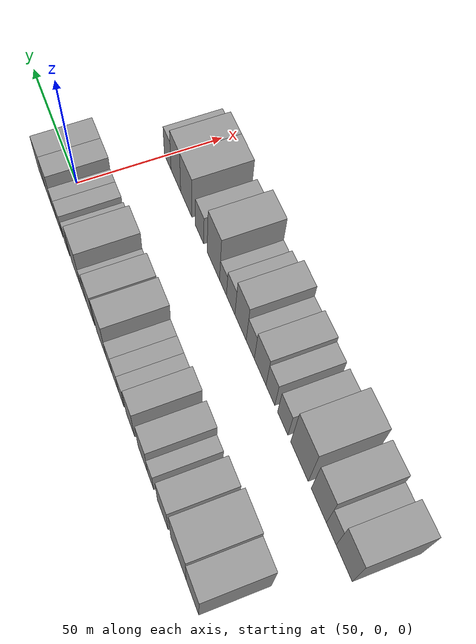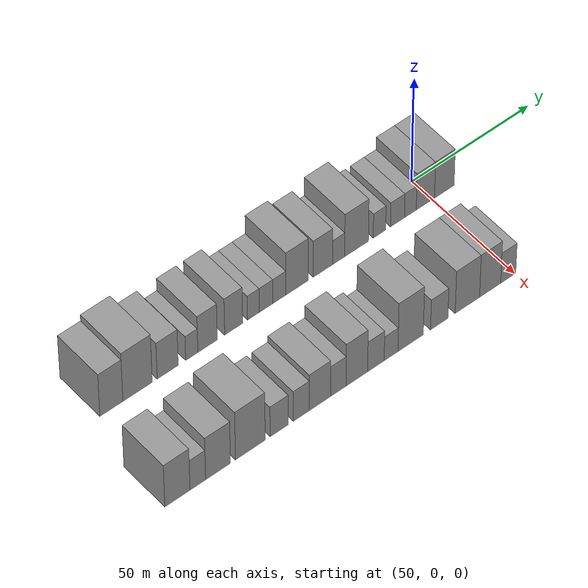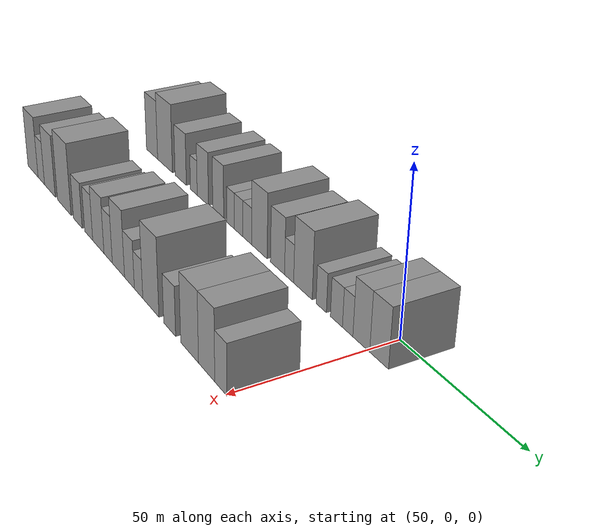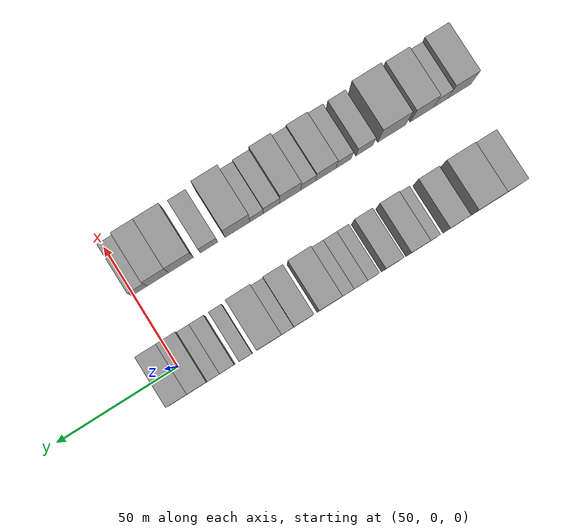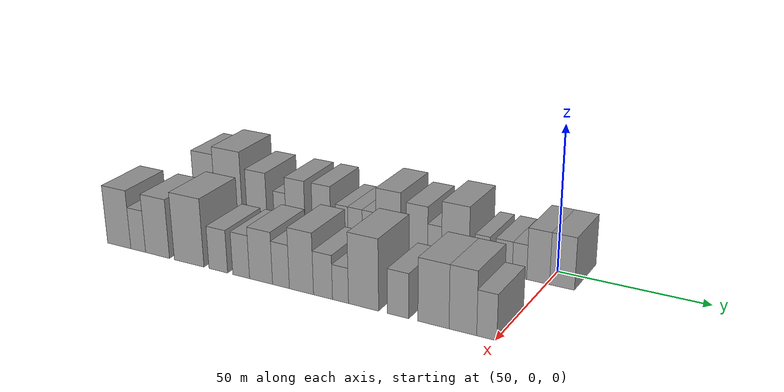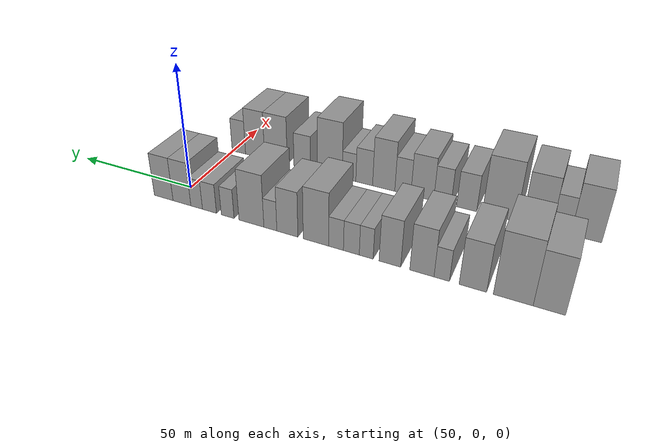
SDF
<sdf version="1.6">
 <world name="default">
  <model name="building_19">
   <static>1</static>
   <pose>50.0000 -131.6414 0 0.000000 0.000000 0.000000</pose>
   <link name="link">
    <pose>0 0 10.50 0 0 0</pose>
    <collision name="collision"><geometry><box><size>20.0000 9.1419 21.0000</size></box></geometry></collision>
    <visual name="visual">
     <cast_shadows>0</cast_shadows>
     <geometry><box><size>20.0000 9.1419 21.0000</size></box></geometry>
     <material>
      <script>
       <uri>model://grey_wall/materials/scripts</uri>
       <uri>model://grey_wall/materials/textures</uri>
       <name>vrc/grey_wall</name>
      </script>
     </material>
    </visual>
   </link>
  </model>
  <model name="building_20">
   <static>1</static>
   <pose>50.0000 -121.2300 0 0.000000 0.000000 0.000000</pose>
   <link name="link">
    <pose>0 0 12.00 0 0 0</pose>
    <collision name="collision"><geometry><box><size>20.0000 11.6808 24.0000</size></box></geometry></collision>
    <visual name="visual">
     <cast_shadows>0</cast_shadows>
     <geometry><box><size>20.0000 11.6808 24.0000</size></box></geometry>
     <material>
      <script>
       <uri>model://grey_wall/materials/scripts</uri>
       <uri>model://grey_wall/materials/textures</uri>
       <name>vrc/grey_wall</name>
      </script>
     </material>
    </visual>
   </link>
  </model>
  <model name="building_21">
   <static>1</static>
   <pose>50.0000 -109.1669 0 0.000000 0.000000 0.000000</pose>
   <link name="link">
    <pose>0 0 9.00 0 0 0</pose>
    <collision name="collision"><geometry><box><size>20.0000 8.4455 18.0000</size></box></geometry></collision>
    <visual name="visual">
     <cast_shadows>0</cast_shadows>
     <geometry><box><size>20.0000 8.4455 18.0000</size></box></geometry>
     <material>
      <script>
       <uri>model://grey_wall/materials/scripts</uri>
       <uri>model://grey_wall/materials/textures</uri>
       <name>vrc/grey_wall</name>
      </script>
     </material>
    </visual>
   </link>
  </model>
  <model name="building_22">
   <static>1</static>
   <pose>50.0000 -99.4959 0 0.000000 0.000000 0.000000</pose>
   <link name="link">
    <pose>0 0 6.00 0 0 0</pose>
    <collision name="collision"><geometry><box><size>20.0000 4.8965 12.0000</size></box></geometry></collision>
    <visual name="visual">
     <cast_shadows>0</cast_shadows>
     <geometry><box><size>20.0000 4.8965 12.0000</size></box></geometry>
     <material>
      <script>
       <uri>model://grey_wall/materials/scripts</uri>
       <uri>model://grey_wall/materials/textures</uri>
       <name>vrc/grey_wall</name>
      </script>
     </material>
    </visual>
   </link>
  </model>
  <model name="building_23">
   <static>1</static>
   <pose>50.0000 -93.1157 0 0.000000 0.000000 0.000000</pose>
   <link name="link">
    <pose>0 0 9.00 0 0 0</pose>
    <collision name="collision"><geometry><box><size>20.0000 7.8640 18.0000</size></box></geometry></collision>
    <visual name="visual">
     <cast_shadows>0</cast_shadows>
     <geometry><box><size>20.0000 7.8640 18.0000</size></box></geometry>
     <material>
      <script>
       <uri>model://grey_wall/materials/scripts</uri>
       <uri>model://grey_wall/materials/textures</uri>
       <name>vrc/grey_wall</name>
      </script>
     </material>
    </visual>
   </link>
  </model>
  <model name="building_24">
   <static>1</static>
   <pose>50.0000 -82.5297 0 0.000000 0.000000 0.000000</pose>
   <link name="link">
    <pose>0 0 9.00 0 0 0</pose>
    <collision name="collision"><geometry><box><size>20.0000 7.3079 18.0000</size></box></geometry></collision>
    <visual name="visual">
     <cast_shadows>0</cast_shadows>
     <geometry><box><size>20.0000 7.3079 18.0000</size></box></geometry>
     <material>
      <script>
       <uri>model://grey_wall/materials/scripts</uri>
       <uri>model://grey_wall/materials/textures</uri>
       <name>vrc/grey_wall</name>
      </script>
     </material>
    </visual>
   </link>
  </model>
  <model name="building_25">
   <static>1</static>
   <pose>50.0000 -74.4745 0 0.000000 0.000000 0.000000</pose>
   <link name="link">
    <pose>0 0 6.00 0 0 0</pose>
    <collision name="collision"><geometry><box><size>20.0000 4.8025 12.0000</size></box></geometry></collision>
    <visual name="visual">
     <cast_shadows>0</cast_shadows>
     <geometry><box><size>20.0000 4.8025 12.0000</size></box></geometry>
     <material>
      <script>
       <uri>model://grey_wall/materials/scripts</uri>
       <uri>model://grey_wall/materials/textures</uri>
       <name>vrc/grey_wall</name>
      </script>
     </material>
    </visual>
   </link>
  </model>
  <model name="building_26">
   <static>1</static>
   <pose>50.0000 -69.2861 0 0.000000 0.000000 0.000000</pose>
   <link name="link">
    <pose>0 0 6.00 0 0 0</pose>
    <collision name="collision"><geometry><box><size>20.0000 5.5743 12.0000</size></box></geometry></collision>
    <visual name="visual">
     <cast_shadows>0</cast_shadows>
     <geometry><box><size>20.0000 5.5743 12.0000</size></box></geometry>
     <material>
      <script>
       <uri>model://grey_wall/materials/scripts</uri>
       <uri>model://grey_wall/materials/textures</uri>
       <name>vrc/grey_wall</name>
      </script>
     </material>
    </visual>
   </link>
  </model>
  <model name="building_27">
   <static>1</static>
   <pose>50.0000 -63.8229 0 0.000000 0.000000 0.000000</pose>
   <link name="link">
    <pose>0 0 6.00 0 0 0</pose>
    <collision name="collision"><geometry><box><size>20.0000 5.3521 12.0000</size></box></geometry></collision>
    <visual name="visual">
     <cast_shadows>0</cast_shadows>
     <geometry><box><size>20.0000 5.3521 12.0000</size></box></geometry>
     <material>
      <script>
       <uri>model://grey_wall/materials/scripts</uri>
       <uri>model://grey_wall/materials/textures</uri>
       <name>vrc/grey_wall</name>
      </script>
     </material>
    </visual>
   </link>
  </model>
  <model name="building_28">
   <static>1</static>
   <pose>50.0000 -56.4965 0 0.000000 0.000000 0.000000</pose>
   <link name="link">
    <pose>0 0 10.50 0 0 0</pose>
    <collision name="collision"><geometry><box><size>20.0000 9.3006 21.0000</size></box></geometry></collision>
    <visual name="visual">
     <cast_shadows>0</cast_shadows>
     <geometry><box><size>20.0000 9.3006 21.0000</size></box></geometry>
     <material>
      <script>
       <uri>model://grey_wall/materials/scripts</uri>
       <uri>model://grey_wall/materials/textures</uri>
       <name>vrc/grey_wall</name>
      </script>
     </material>
    </visual>
   </link>
  </model>
  <model name="building_29">
   <static>1</static>
   <pose>50.0000 -45.8440 0 0.000000 0.000000 0.000000</pose>
   <link name="link">
    <pose>0 0 9.00 0 0 0</pose>
    <collision name="collision"><geometry><box><size>20.0000 8.0045 18.0000</size></box></geometry></collision>
    <visual name="visual">
     <cast_shadows>0</cast_shadows>
     <geometry><box><size>20.0000 8.0045 18.0000</size></box></geometry>
     <material>
      <script>
       <uri>model://grey_wall/materials/scripts</uri>
       <uri>model://grey_wall/materials/textures</uri>
       <name>vrc/grey_wall</name>
      </script>
     </material>
    </visual>
   </link>
  </model>
  <model name="building_30">
   <static>1</static>
   <pose>50.0000 -39.3203 0 0.000000 0.000000 0.000000</pose>
   <link name="link">
    <pose>0 0 6.00 0 0 0</pose>
    <collision name="collision"><geometry><box><size>20.0000 5.0430 12.0000</size></box></geometry></collision>
    <visual name="visual">
     <cast_shadows>0</cast_shadows>
     <geometry><box><size>20.0000 5.0430 12.0000</size></box></geometry>
     <material>
      <script>
       <uri>model://grey_wall/materials/scripts</uri>
       <uri>model://grey_wall/materials/textures</uri>
       <name>vrc/grey_wall</name>
      </script>
     </material>
    </visual>
   </link>
  </model>
  <model name="building_31">
   <static>1</static>
   <pose>50.0000 -31.8423 0 0.000000 0.000000 0.000000</pose>
   <link name="link">
    <pose>0 0 10.50 0 0 0</pose>
    <collision name="collision"><geometry><box><size>20.0000 9.9128 21.0000</size></box></geometry></collision>
    <visual name="visual">
     <cast_shadows>0</cast_shadows>
     <geometry><box><size>20.0000 9.9128 21.0000</size></box></geometry>
     <material>
      <script>
       <uri>model://grey_wall/materials/scripts</uri>
       <uri>model://grey_wall/materials/textures</uri>
       <name>vrc/grey_wall</name>
      </script>
     </material>
    </visual>
   </link>
  </model>
  <model name="building_32">
   <static>1</static>
   <pose>50.0000 -22.2668 0 0.000000 0.000000 0.000000</pose>
   <link name="link">
    <pose>0 0 6.00 0 0 0</pose>
    <collision name="collision"><geometry><box><size>20.0000 5.2384 12.0000</size></box></geometry></collision>
    <visual name="visual">
     <cast_shadows>0</cast_shadows>
     <geometry><box><size>20.0000 5.2384 12.0000</size></box></geometry>
     <material>
      <script>
       <uri>model://grey_wall/materials/scripts</uri>
       <uri>model://grey_wall/materials/textures</uri>
       <name>vrc/grey_wall</name>
      </script>
     </material>
    </visual>
   </link>
  </model>
  <model name="building_33">
   <static>1</static>
   <pose>50.0000 -14.6996 0 0.000000 0.000000 0.000000</pose>
   <link name="link">
    <pose>0 0 6.00 0 0 0</pose>
    <collision name="collision"><geometry><box><size>20.0000 5.8960 12.0000</size></box></geometry></collision>
    <visual name="visual">
     <cast_shadows>0</cast_shadows>
     <geometry><box><size>20.0000 5.8960 12.0000</size></box></geometry>
     <material>
      <script>
       <uri>model://grey_wall/materials/scripts</uri>
       <uri>model://grey_wall/materials/textures</uri>
       <name>vrc/grey_wall</name>
      </script>
     </material>
    </visual>
   </link>
  </model>
  <model name="building_34">
   <static>1</static>
   <pose>50.0000 -9.2656 0 0.000000 0.000000 0.000000</pose>
   <link name="link">
    <pose>0 0 6.00 0 0 0</pose>
    <collision name="collision"><geometry><box><size>20.0000 4.9720 12.0000</size></box></geometry></collision>
    <visual name="visual">
     <cast_shadows>0</cast_shadows>
     <geometry><box><size>20.0000 4.9720 12.0000</size></box></geometry>
     <material>
      <script>
       <uri>model://grey_wall/materials/scripts</uri>
       <uri>model://grey_wall/materials/textures</uri>
       <name>vrc/grey_wall</name>
      </script>
     </material>
    </visual>
   </link>
  </model>
  <model name="building_35">
   <static>1</static>
   <pose>50.0000 -2.9061 0 0.000000 0.000000 0.000000</pose>
   <link name="link">
    <pose>0 0 9.00 0 0 0</pose>
    <collision name="collision"><geometry><box><size>20.0000 7.7469 18.0000</size></box></geometry></collision>
    <visual name="visual">
     <cast_shadows>0</cast_shadows>
     <geometry><box><size>20.0000 7.7469 18.0000</size></box></geometry>
     <material>
      <script>
       <uri>model://grey_wall/materials/scripts</uri>
       <uri>model://grey_wall/materials/textures</uri>
       <name>vrc/grey_wall</name>
      </script>
     </material>
    </visual>
   </link>
  </model>
  <model name="building_36">
   <static>1</static>
   <pose>50.0000 5.1324 0 0.000000 0.000000 0.000000</pose>
   <link name="link">
    <pose>0 0 9.00 0 0 0</pose>
    <collision name="collision"><geometry><box><size>20.0000 8.3301 18.0000</size></box></geometry></collision>
    <visual name="visual">
     <cast_shadows>0</cast_shadows>
     <geometry><box><size>20.0000 8.3301 18.0000</size></box></geometry>
     <material>
      <script>
       <uri>model://grey_wall/materials/scripts</uri>
       <uri>model://grey_wall/materials/textures</uri>
       <name>vrc/grey_wall</name>
      </script>
     </material>
    </visual>
   </link>
  </model>
  <model name="building_87">
   <static>1</static>
   <pose>90.0000 -137.7073 0 0.000000 0.000000 0.000000</pose>
   <link name="link">
    <pose>0 0 10.50 0 0 0</pose>
    <collision name="collision"><geometry><box><size>20.0000 9.9009 21.0000</size></box></geometry></collision>
    <visual name="visual">
     <cast_shadows>0</cast_shadows>
     <geometry><box><size>20.0000 9.9009 21.0000</size></box></geometry>
     <material>
      <script>
       <uri>model://grey_wall/materials/scripts</uri>
       <uri>model://grey_wall/materials/textures</uri>
       <name>vrc/grey_wall</name>
      </script>
     </material>
    </visual>
   </link>
  </model>
  <model name="building_88">
   <static>1</static>
   <pose>90.0000 -129.6641 0 0.000000 0.000000 0.000000</pose>
   <link name="link">
    <pose>0 0 7.50 0 0 0</pose>
    <collision name="collision"><geometry><box><size>20.0000 6.1856 15.0000</size></box></geometry></collision>
    <visual name="visual">
     <cast_shadows>0</cast_shadows>
     <geometry><box><size>20.0000 6.1856 15.0000</size></box></geometry>
     <material>
      <script>
       <uri>model://grey_wall/materials/scripts</uri>
       <uri>model://grey_wall/materials/textures</uri>
       <name>vrc/grey_wall</name>
      </script>
     </material>
    </visual>
   </link>
  </model>
  <model name="building_89">
   <static>1</static>
   <pose>90.0000 -121.6349 0 0.000000 0.000000 0.000000</pose>
   <link name="link">
    <pose>0 0 10.50 0 0 0</pose>
    <collision name="collision"><geometry><box><size>20.0000 9.8728 21.0000</size></box></geometry></collision>
    <visual name="visual">
     <cast_shadows>0</cast_shadows>
     <geometry><box><size>20.0000 9.8728 21.0000</size></box></geometry>
     <material>
      <script>
       <uri>model://grey_wall/materials/scripts</uri>
       <uri>model://grey_wall/materials/textures</uri>
       <name>vrc/grey_wall</name>
      </script>
     </material>
    </visual>
   </link>
  </model>
  <model name="building_90">
   <static>1</static>
   <pose>90.0000 -108.7541 0 0.000000 0.000000 0.000000</pose>
   <link name="link">
    <pose>0 0 12.00 0 0 0</pose>
    <collision name="collision"><geometry><box><size>20.0000 11.8887 24.0000</size></box></geometry></collision>
    <visual name="visual">
     <cast_shadows>0</cast_shadows>
     <geometry><box><size>20.0000 11.8887 24.0000</size></box></geometry>
     <material>
      <script>
       <uri>model://grey_wall/materials/scripts</uri>
       <uri>model://grey_wall/materials/textures</uri>
       <name>vrc/grey_wall</name>
      </script>
     </material>
    </visual>
   </link>
  </model>
  <model name="building_91">
   <static>1</static>
   <pose>90.0000 -97.1588 0 0.000000 0.000000 0.000000</pose>
   <link name="link">
    <pose>0 0 7.50 0 0 0</pose>
    <collision name="collision"><geometry><box><size>20.0000 7.3018 15.0000</size></box></geometry></collision>
    <visual name="visual">
     <cast_shadows>0</cast_shadows>
     <geometry><box><size>20.0000 7.3018 15.0000</size></box></geometry>
     <material>
      <script>
       <uri>model://grey_wall/materials/scripts</uri>
       <uri>model://grey_wall/materials/textures</uri>
       <name>vrc/grey_wall</name>
      </script>
     </material>
    </visual>
   </link>
  </model>
  <model name="building_92">
   <static>1</static>
   <pose>90.0000 -88.2832 0 0.000000 0.000000 0.000000</pose>
   <link name="link">
    <pose>0 0 7.50 0 0 0</pose>
    <collision name="collision"><geometry><box><size>20.0000 6.4495 15.0000</size></box></geometry></collision>
    <visual name="visual">
     <cast_shadows>0</cast_shadows>
     <geometry><box><size>20.0000 6.4495 15.0000</size></box></geometry>
     <material>
      <script>
       <uri>model://grey_wall/materials/scripts</uri>
       <uri>model://grey_wall/materials/textures</uri>
       <name>vrc/grey_wall</name>
      </script>
     </material>
    </visual>
   </link>
  </model>
  <model name="building_93">
   <static>1</static>
   <pose>90.0000 -80.7114 0 0.000000 0.000000 0.000000</pose>
   <link name="link">
    <pose>0 0 9.00 0 0 0</pose>
    <collision name="collision"><geometry><box><size>20.0000 8.6941 18.0000</size></box></geometry></collision>
    <visual name="visual">
     <cast_shadows>0</cast_shadows>
     <geometry><box><size>20.0000 8.6941 18.0000</size></box></geometry>
     <material>
      <script>
       <uri>model://grey_wall/materials/scripts</uri>
       <uri>model://grey_wall/materials/textures</uri>
       <name>vrc/grey_wall</name>
      </script>
     </material>
    </visual>
   </link>
  </model>
  <model name="building_94">
   <static>1</static>
   <pose>90.0000 -73.2399 0 0.000000 0.000000 0.000000</pose>
   <link name="link">
    <pose>0 0 7.50 0 0 0</pose>
    <collision name="collision"><geometry><box><size>20.0000 6.2490 15.0000</size></box></geometry></collision>
    <visual name="visual">
     <cast_shadows>0</cast_shadows>
     <geometry><box><size>20.0000 6.2490 15.0000</size></box></geometry>
     <material>
      <script>
       <uri>model://grey_wall/materials/scripts</uri>
       <uri>model://grey_wall/materials/textures</uri>
       <name>vrc/grey_wall</name>
      </script>
     </material>
    </visual>
   </link>
  </model>
  <model name="building_95">
   <static>1</static>
   <pose>90.0000 -65.6993 0 0.000000 0.000000 0.000000</pose>
   <link name="link">
    <pose>0 0 10.50 0 0 0</pose>
    <collision name="collision"><geometry><box><size>20.0000 8.8324 21.0000</size></box></geometry></collision>
    <visual name="visual">
     <cast_shadows>0</cast_shadows>
     <geometry><box><size>20.0000 8.8324 21.0000</size></box></geometry>
     <material>
      <script>
       <uri>model://grey_wall/materials/scripts</uri>
       <uri>model://grey_wall/materials/textures</uri>
       <name>vrc/grey_wall</name>
      </script>
     </material>
    </visual>
   </link>
  </model>
  <model name="building_96">
   <static>1</static>
   <pose>90.0000 -57.8757 0 0.000000 0.000000 0.000000</pose>
   <link name="link">
    <pose>0 0 7.50 0 0 0</pose>
    <collision name="collision"><geometry><box><size>20.0000 6.8147 15.0000</size></box></geometry></collision>
    <visual name="visual">
     <cast_shadows>0</cast_shadows>
     <geometry><box><size>20.0000 6.8147 15.0000</size></box></geometry>
     <material>
      <script>
       <uri>model://grey_wall/materials/scripts</uri>
       <uri>model://grey_wall/materials/textures</uri>
       <name>vrc/grey_wall</name>
      </script>
     </material>
    </visual>
   </link>
  </model>
  <model name="building_97">
   <static>1</static>
   <pose>90.0000 -51.6335 0 0.000000 0.000000 0.000000</pose>
   <link name="link">
    <pose>0 0 6.00 0 0 0</pose>
    <collision name="collision"><geometry><box><size>20.0000 5.6696 12.0000</size></box></geometry></collision>
    <visual name="visual">
     <cast_shadows>0</cast_shadows>
     <geometry><box><size>20.0000 5.6696 12.0000</size></box></geometry>
     <material>
      <script>
       <uri>model://grey_wall/materials/scripts</uri>
       <uri>model://grey_wall/materials/textures</uri>
       <name>vrc/grey_wall</name>
      </script>
     </material>
    </visual>
   </link>
  </model>
  <model name="building_98">
   <static>1</static>
   <pose>90.0000 -43.5629 0 0.000000 0.000000 0.000000</pose>
   <link name="link">
    <pose>0 0 12.00 0 0 0</pose>
    <collision name="collision"><geometry><box><size>20.0000 10.4717 24.0000</size></box></geometry></collision>
    <visual name="visual">
     <cast_shadows>0</cast_shadows>
     <geometry><box><size>20.0000 10.4717 24.0000</size></box></geometry>
     <material>
      <script>
       <uri>model://grey_wall/materials/scripts</uri>
       <uri>model://grey_wall/materials/textures</uri>
       <name>vrc/grey_wall</name>
      </script>
     </material>
    </visual>
   </link>
  </model>
  <model name="building_99">
   <static>1</static>
   <pose>90.0000 -31.6972 0 0.000000 0.000000 0.000000</pose>
   <link name="link">
    <pose>0 0 7.50 0 0 0</pose>
    <collision name="collision"><geometry><box><size>20.0000 7.2596 15.0000</size></box></geometry></collision>
    <visual name="visual">
     <cast_shadows>0</cast_shadows>
     <geometry><box><size>20.0000 7.2596 15.0000</size></box></geometry>
     <material>
      <script>
       <uri>model://grey_wall/materials/scripts</uri>
       <uri>model://grey_wall/materials/textures</uri>
       <name>vrc/grey_wall</name>
      </script>
     </material>
    </visual>
   </link>
  </model>
  <model name="building_100">
   <static>1</static>
   <pose>90.0000 -19.9507 0 0.000000 0.000000 0.000000</pose>
   <link name="link">
    <pose>0 0 10.50 0 0 0</pose>
    <collision name="collision"><geometry><box><size>20.0000 10.2334 21.0000</size></box></geometry></collision>
    <visual name="visual">
     <cast_shadows>0</cast_shadows>
     <geometry><box><size>20.0000 10.2334 21.0000</size></box></geometry>
     <material>
      <script>
       <uri>model://grey_wall/materials/scripts</uri>
       <uri>model://grey_wall/materials/textures</uri>
       <name>vrc/grey_wall</name>
      </script>
     </material>
    </visual>
   </link>
  </model>
  <model name="building_101">
   <static>1</static>
   <pose>90.0000 -10.3966 0 0.000000 0.000000 0.000000</pose>
   <link name="link">
    <pose>0 0 10.50 0 0 0</pose>
    <collision name="collision"><geometry><box><size>20.0000 8.8749 21.0000</size></box></geometry></collision>
    <visual name="visual">
     <cast_shadows>0</cast_shadows>
     <geometry><box><size>20.0000 8.8749 21.0000</size></box></geometry>
     <material>
      <script>
       <uri>model://grey_wall/materials/scripts</uri>
       <uri>model://grey_wall/materials/textures</uri>
       <name>vrc/grey_wall</name>
      </script>
     </material>
    </visual>
   </link>
  </model>
  <model name="building_102">
   <static>1</static>
   <pose>90.0000 -2.7772 0 0.000000 0.000000 0.000000</pose>
   <link name="link">
    <pose>0 0 7.50 0 0 0</pose>
    <collision name="collision"><geometry><box><size>20.0000 6.3639 15.0000</size></box></geometry></collision>
    <visual name="visual">
     <cast_shadows>0</cast_shadows>
     <geometry><box><size>20.0000 6.3639 15.0000</size></box></geometry>
     <material>
      <script>
       <uri>model://grey_wall/materials/scripts</uri>
       <uri>model://grey_wall/materials/textures</uri>
       <name>vrc/grey_wall</name>
      </script>
     </material>
    </visual>
   </link>
  </model>
 </world>
</sdf>
